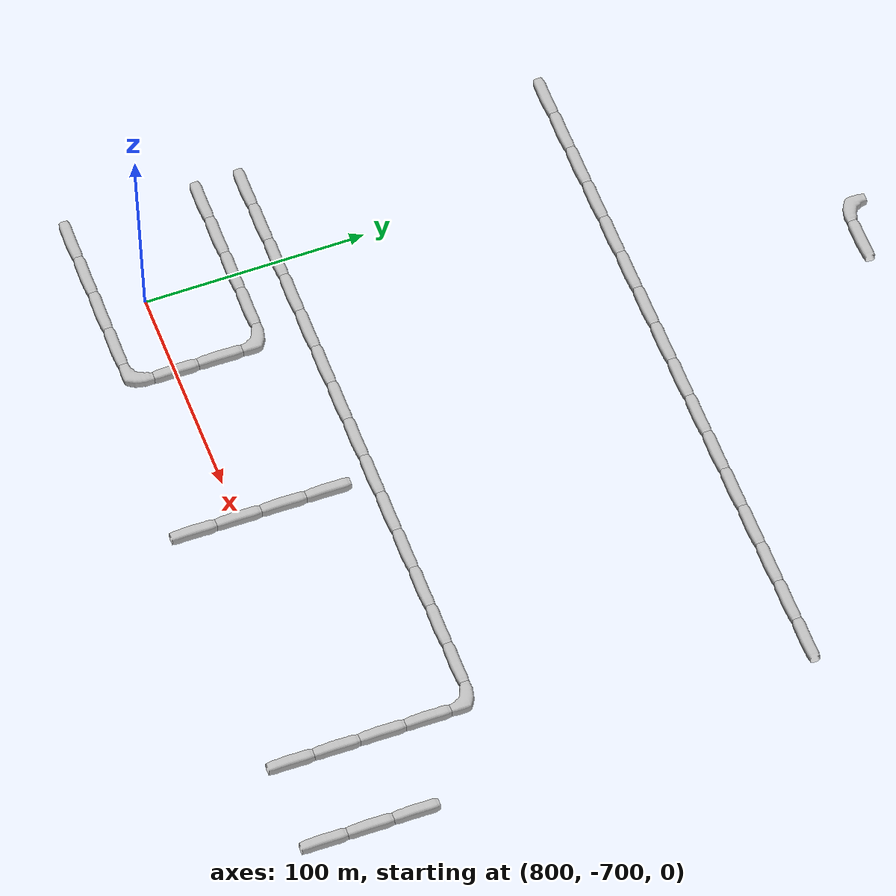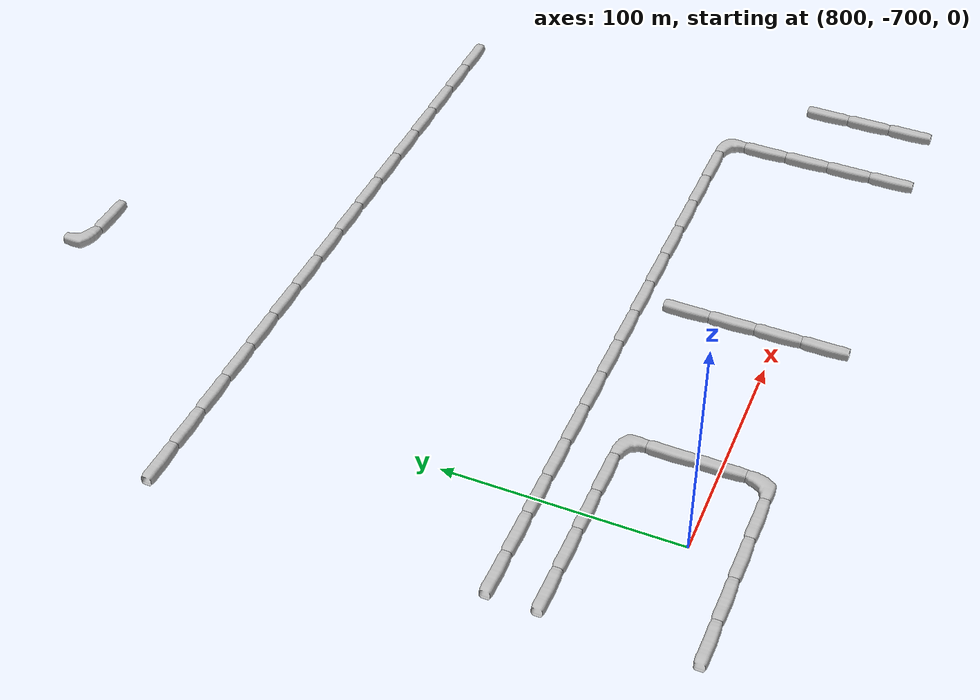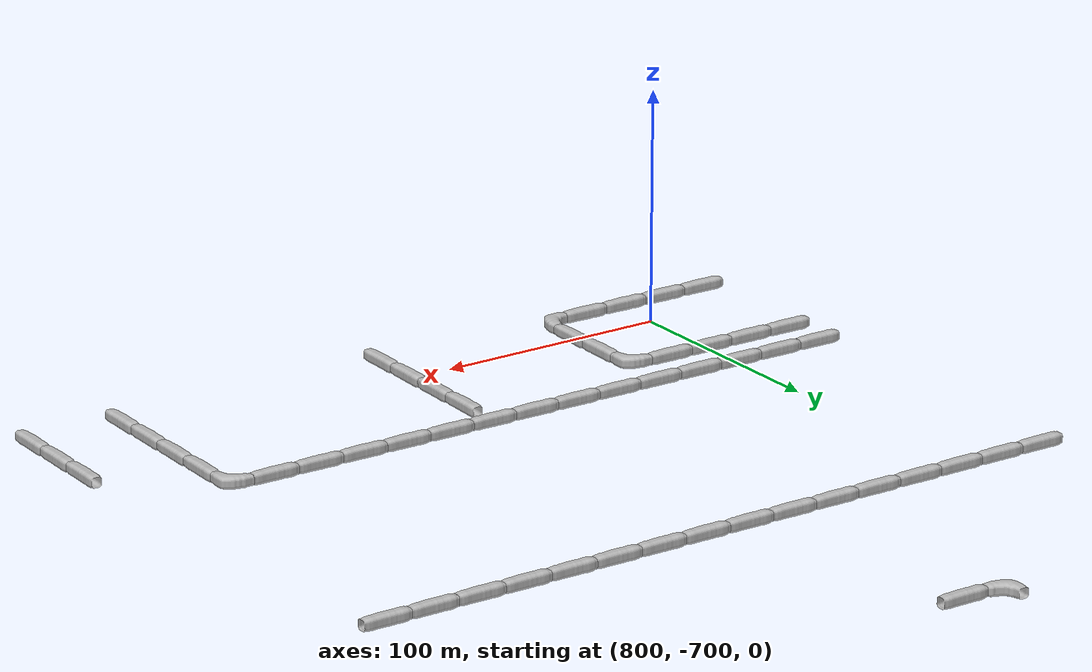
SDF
<sdf version="1.6">
 <world name="cave_32000_2">
  <include>
   <static>true</static>
   <name>cave_54_-34</name>
   <pose>1080 -680 0 0 0 0.0</pose>
   <uri>model://cave_straight_20m</uri>
  </include>
  <include>
   <static>true</static>
   <name>cave_54_-35</name>
   <pose>1080 -700 0 0 0 0.0</pose>
   <uri>model://cave_straight_20m</uri>
  </include>
  <include>
   <static>true</static>
   <name>cave_54_-36</name>
   <pose>1080 -720 0 0 0 0.0</pose>
   <uri>model://cave_straight_20m</uri>
  </include>
  <include>
   <static>true</static>
   <name>cave_46_-36</name>
   <pose>920 -720 0 0 0 0.0</pose>
   <uri>model://cave_straight_20m</uri>
  </include>
  <include>
   <static>true</static>
   <name>cave_46_-35</name>
   <pose>920 -700 0 0 0 0.0</pose>
   <uri>model://cave_straight_20m</uri>
  </include>
  <include>
   <static>true</static>
   <name>cave_46_-34</name>
   <pose>920 -680 0 0 0 0.0</pose>
   <uri>model://cave_straight_20m</uri>
  </include>
  <include>
   <static>true</static>
   <name>cave_46_-33</name>
   <pose>920 -660 0 0 0 0.0</pose>
   <uri>model://cave_straight_20m</uri>
  </include>
  <include>
   <static>true</static>
   <name>cave_52_-36</name>
   <pose>1040 -720 0 0 0 0.0</pose>
   <uri>model://cave_straight_20m</uri>
  </include>
  <include>
   <static>true</static>
   <name>cave_52_-35</name>
   <pose>1040 -700 0 0 0 0.0</pose>
   <uri>model://cave_straight_20m</uri>
  </include>
  <include>
   <static>true</static>
   <name>cave_52_-34</name>
   <pose>1040 -680 0 0 0 0.0</pose>
   <uri>model://cave_straight_20m</uri>
  </include>
  <include>
   <static>true</static>
   <name>cave_52_-33</name>
   <pose>1040 -660 0 0 0 0.0</pose>
   <uri>model://cave_straight_20m</uri>
  </include>
  <include>
   <static>true</static>
   <name>cave_52_-32</name>
   <pose>1040 -640 0 0 0 3.141592653589793</pose>
   <uri>model://cave_L_20m</uri>
  </include>
  <include>
   <static>true</static>
   <name>cave_51_-32</name>
   <pose>1020 -640 0 0 0 1.5707963267948966</pose>
   <uri>model://cave_straight_20m</uri>
  </include>
  <include>
   <static>true</static>
   <name>cave_50_-32</name>
   <pose>1000 -640 0 0 0 1.5707963267948966</pose>
   <uri>model://cave_straight_20m</uri>
  </include>
  <include>
   <static>true</static>
   <name>cave_49_-32</name>
   <pose>980 -640 0 0 0 1.5707963267948966</pose>
   <uri>model://cave_straight_20m</uri>
  </include>
  <include>
   <static>true</static>
   <name>cave_48_-32</name>
   <pose>960 -640 0 0 0 1.5707963267948966</pose>
   <uri>model://cave_straight_20m</uri>
  </include>
  <include>
   <static>true</static>
   <name>cave_47_-32</name>
   <pose>940 -640 0 0 0 1.5707963267948966</pose>
   <uri>model://cave_straight_20m</uri>
  </include>
  <include>
   <static>true</static>
   <name>cave_46_-32</name>
   <pose>920 -640 0 0 0 1.5707963267948966</pose>
   <uri>model://cave_straight_20m</uri>
  </include>
  <include>
   <static>true</static>
   <name>cave_45_-32</name>
   <pose>900 -640 0 0 0 1.5707963267948966</pose>
   <uri>model://cave_straight_20m</uri>
  </include>
  <include>
   <static>true</static>
   <name>cave_44_-32</name>
   <pose>880 -640 0 0 0 1.5707963267948966</pose>
   <uri>model://cave_straight_20m</uri>
  </include>
  <include>
   <static>true</static>
   <name>cave_43_-32</name>
   <pose>860 -640 0 0 0 1.5707963267948966</pose>
   <uri>model://cave_straight_20m</uri>
  </include>
  <include>
   <static>true</static>
   <name>cave_42_-32</name>
   <pose>840 -640 0 0 0 1.5707963267948966</pose>
   <uri>model://cave_straight_20m</uri>
  </include>
  <include>
   <static>true</static>
   <name>cave_41_-32</name>
   <pose>820 -640 0 0 0 1.5707963267948966</pose>
   <uri>model://cave_straight_20m</uri>
  </include>
  <include>
   <static>true</static>
   <name>cave_40_-32</name>
   <pose>800 -640 0 0 0 1.5707963267948966</pose>
   <uri>model://cave_straight_20m</uri>
  </include>
  <include>
   <static>true</static>
   <name>cave_39_-32</name>
   <pose>780 -640 0 0 0 1.5707963267948966</pose>
   <uri>model://cave_straight_20m</uri>
  </include>
  <include>
   <static>true</static>
   <name>cave_38_-32</name>
   <pose>760 -640 0 0 0 1.5707963267948966</pose>
   <uri>model://cave_straight_20m</uri>
  </include>
  <include>
   <static>true</static>
   <name>cave_38_-36</name>
   <pose>760 -720 0 0 0 1.5707963267948966</pose>
   <uri>model://cave_straight_20m</uri>
  </include>
  <include>
   <static>true</static>
   <name>cave_39_-36</name>
   <pose>780 -720 0 0 0 1.5707963267948966</pose>
   <uri>model://cave_straight_20m</uri>
  </include>
  <include>
   <static>true</static>
   <name>cave_40_-36</name>
   <pose>800 -720 0 0 0 1.5707963267948966</pose>
   <uri>model://cave_straight_20m</uri>
  </include>
  <include>
   <static>true</static>
   <name>cave_41_-36</name>
   <pose>820 -720 0 0 0 1.5707963267948966</pose>
   <uri>model://cave_straight_20m</uri>
  </include>
  <include>
   <static>true</static>
   <name>cave_42_-36</name>
   <pose>840 -720 0 0 0 1.5707963267948966</pose>
   <uri>model://cave_L_20m</uri>
  </include>
  <include>
   <static>true</static>
   <name>cave_42_-35</name>
   <pose>840 -700 0 0 0 0.0</pose>
   <uri>model://cave_straight_20m</uri>
  </include>
  <include>
   <static>true</static>
   <name>cave_42_-34</name>
   <pose>840 -680 0 0 0 0.0</pose>
   <uri>model://cave_straight_20m</uri>
  </include>
  <include>
   <static>true</static>
   <name>cave_42_-33</name>
   <pose>840 -660 0 0 0 3.141592653589793</pose>
   <uri>model://cave_L_20m</uri>
  </include>
  <include>
   <static>true</static>
   <name>cave_41_-33</name>
   <pose>820 -660 0 0 0 1.5707963267948966</pose>
   <uri>model://cave_straight_20m</uri>
  </include>
  <include>
   <static>true</static>
   <name>cave_40_-33</name>
   <pose>800 -660 0 0 0 1.5707963267948966</pose>
   <uri>model://cave_straight_20m</uri>
  </include>
  <include>
   <static>true</static>
   <name>cave_39_-33</name>
   <pose>780 -660 0 0 0 1.5707963267948966</pose>
   <uri>model://cave_straight_20m</uri>
  </include>
  <include>
   <static>true</static>
   <name>cave_38_-33</name>
   <pose>760 -660 0 0 0 1.5707963267948966</pose>
   <uri>model://cave_straight_20m</uri>
  </include>
  <include>
   <static>true</static>
   <name>cave_44_-20</name>
   <pose>880 -400 0 0 0 1.5707963267948966</pose>
   <uri>model://cave_straight_20m</uri>
  </include>
  <include>
   <static>true</static>
   <name>cave_43_-20</name>
   <pose>860 -400 0 0 0 0.0</pose>
   <uri>model://cave_L_20m</uri>
  </include>
  <include>
   <static>true</static>
   <name>cave_38_-25</name>
   <pose>760 -500 0 0 0 1.5707963267948966</pose>
   <uri>model://cave_straight_20m</uri>
  </include>
  <include>
   <static>true</static>
   <name>cave_39_-25</name>
   <pose>780 -500 0 0 0 1.5707963267948966</pose>
   <uri>model://cave_straight_20m</uri>
  </include>
  <include>
   <static>true</static>
   <name>cave_40_-25</name>
   <pose>800 -500 0 0 0 1.5707963267948966</pose>
   <uri>model://cave_straight_20m</uri>
  </include>
  <include>
   <static>true</static>
   <name>cave_41_-25</name>
   <pose>820 -500 0 0 0 1.5707963267948966</pose>
   <uri>model://cave_straight_20m</uri>
  </include>
  <include>
   <static>true</static>
   <name>cave_42_-25</name>
   <pose>840 -500 0 0 0 1.5707963267948966</pose>
   <uri>model://cave_straight_20m</uri>
  </include>
  <include>
   <static>true</static>
   <name>cave_43_-25</name>
   <pose>860 -500 0 0 0 1.5707963267948966</pose>
   <uri>model://cave_straight_20m</uri>
  </include>
  <include>
   <static>true</static>
   <name>cave_44_-25</name>
   <pose>880 -500 0 0 0 1.5707963267948966</pose>
   <uri>model://cave_straight_20m</uri>
  </include>
  <include>
   <static>true</static>
   <name>cave_45_-25</name>
   <pose>900 -500 0 0 0 1.5707963267948966</pose>
   <uri>model://cave_straight_20m</uri>
  </include>
  <include>
   <static>true</static>
   <name>cave_46_-25</name>
   <pose>920 -500 0 0 0 1.5707963267948966</pose>
   <uri>model://cave_straight_20m</uri>
  </include>
  <include>
   <static>true</static>
   <name>cave_47_-25</name>
   <pose>940 -500 0 0 0 1.5707963267948966</pose>
   <uri>model://cave_straight_20m</uri>
  </include>
  <include>
   <static>true</static>
   <name>cave_48_-25</name>
   <pose>960 -500 0 0 0 1.5707963267948966</pose>
   <uri>model://cave_straight_20m</uri>
  </include>
  <include>
   <static>true</static>
   <name>cave_49_-25</name>
   <pose>980 -500 0 0 0 1.5707963267948966</pose>
   <uri>model://cave_straight_20m</uri>
  </include>
  <include>
   <static>true</static>
   <name>cave_50_-25</name>
   <pose>1000 -500 0 0 0 1.5707963267948966</pose>
   <uri>model://cave_straight_20m</uri>
  </include>
  <include>
   <static>true</static>
   <name>cave_51_-25</name>
   <pose>1020 -500 0 0 0 1.5707963267948966</pose>
   <uri>model://cave_straight_20m</uri>
  </include>
  <include>
   <static>true</static>
   <name>cave_52_-25</name>
   <pose>1040 -500 0 0 0 1.5707963267948966</pose>
   <uri>model://cave_straight_20m</uri>
  </include>
  <include>
   <static>true</static>
   <name>cave_53_-25</name>
   <pose>1060 -500 0 0 0 1.5707963267948966</pose>
   <uri>model://cave_straight_20m</uri>
  </include>
 </world>
</sdf>
